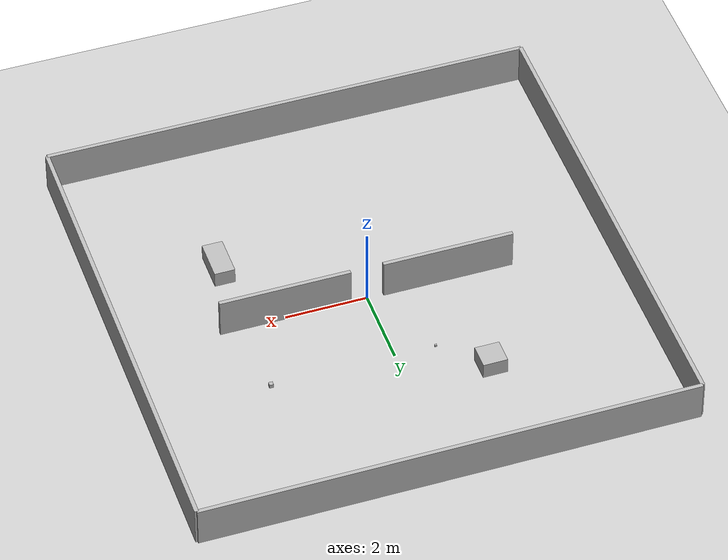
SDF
<?xml version="1.0" ?>
<sdf version="1.8">
  <world name="complex_room">

    <!-- ================= Physics & Systems ================= -->
    <physics name="1ms" type="ignored">
      <max_step_size>0.001</max_step_size>
      <real_time_factor>1.0</real_time_factor>
    </physics>

    <plugin filename="libignition-gazebo-physics-system.so"
            name="ignition::gazebo::systems::Physics"/>
    <plugin filename="libignition-gazebo-user-commands-system.so"
            name="ignition::gazebo::systems::UserCommands"/>
    <plugin filename="libignition-gazebo-scene-broadcaster-system.so"
            name="ignition::gazebo::systems::SceneBroadcaster"/>

    <!-- ================= Light ================= -->
    <light type="directional" name="sun">
      <pose>0 0 10 0 0 0</pose>
      <diffuse>0.8 0.8 0.8 1</diffuse>
      <direction>-0.5 0.2 -1</direction>
    </light>

    <!-- ================= Ground ================= -->
    <model name="ground_plane">
      <static>true</static>
      <link name="link">
        <collision name="collision">
          <geometry>
            <plane>
              <normal>0 0 1</normal>
              <size>50 50</size>
            </plane>
          </geometry>
        </collision>
        <visual name="visual">
          <geometry>
            <plane>
              <normal>0 0 1</normal>
              <size>50 50</size>
            </plane>
          </geometry>
        </visual>
      </link>
    </model>

    <!-- ================= Outer Walls ================= -->
    <model name="wall_north">
      <static>true</static>
      <pose>0 6 0.5 0 0 0</pose>
      <link name="link">
        <collision><geometry><box><size>12 0.1 1</size></box></geometry></collision>
        <visual><geometry><box><size>12 0.1 1</size></box></geometry></visual>
      </link>
    </model>

    <model name="wall_south">
      <static>true</static>
      <pose>0 -6 0.5 0 0 0</pose>
      <link name="link">
        <collision><geometry><box><size>12 0.1 1</size></box></geometry></collision>
        <visual><geometry><box><size>12 0.1 1</size></box></geometry></visual>
      </link>
    </model>

    <model name="wall_east">
      <static>true</static>
      <pose>6 0 0.5 0 0 0</pose>
      <link name="link">
        <collision><geometry><box><size>0.1 12 1</size></box></geometry></collision>
        <visual><geometry><box><size>0.1 12 1</size></box></geometry></visual>
      </link>
    </model>

    <model name="wall_west">
      <static>true</static>
      <pose>-6 0 0.5 0 0 0</pose>
      <link name="link">
        <collision><geometry><box><size>0.1 12 1</size></box></geometry></collision>
        <visual><geometry><box><size>0.1 12 1</size></box></geometry></visual>
      </link>
    </model>

    <!-- ================= Inner Wall with Door ================= -->
    <!-- 左半 -->
    <model name="inner_wall_left">
      <static>true</static>
      <pose>-2 0 0.5 0 0 0</pose>
      <link name="link">
        <collision><geometry><box><size>3.2 0.1 1</size></box></geometry></collision>
        <visual><geometry><box><size>3.2 0.1 1</size></box></geometry></visual>
      </link>
    </model>

    <!-- 右半 -->
    <model name="inner_wall_right">
      <static>true</static>
      <pose>2 0 0.5 0 0 0</pose>
      <link name="link">
        <collision><geometry><box><size>3.2 0.1 1</size></box></geometry></collision>
        <visual><geometry><box><size>3.2 0.1 1</size></box></geometry></visual>
      </link>
    </model>

    <!-- ================= Obstacles ================= -->
    <model name="obstacle_1">
      <static>true</static>
      <pose>-2 3 0.2 0 0 0</pose>
      <link name="link">
        <collision><geometry><box><size>0.6 0.6 0.4</size></box></geometry></collision>
        <visual><geometry><box><size>0.6 0.6 0.4</size></box></geometry></visual>
      </link>
    </model>

    <model name="obstacle_2">
      <static>true</static>
      <pose>3 -2 0.2 0 0 0</pose>
      <link name="link">
        <collision><geometry><box><size>0.5 1.0 0.4</size></box></geometry></collision>
        <visual><geometry><box><size>0.5 1.0 0.4</size></box></geometry></visual>
      </link>
    </model>

    <!-- ================= Grasp Objects ================= -->
    <!-- 5 cm cube -->
    <model name="cube_5cm">
      <static>false</static>
      <pose>-1 2 0.025 0 0 0</pose>
      <link name="link">
        <inertial><mass>0.05</mass></inertial>
        <collision><geometry><box><size>0.05 0.05 0.05</size></box></geometry></collision>
        <visual><geometry><box><size>0.05 0.05 0.05</size></box></geometry></visual>
      </link>
    </model>

    <!-- 10 cm cube -->
    <model name="cube_10cm">
      <static>false</static>
      <pose>3 2 0.05 0 0 0</pose>
      <link name="link">
        <inertial><mass>0.2</mass></inertial>
        <collision><geometry><box><size>0.1 0.1 0.1</size></box></geometry></collision>
        <visual><geometry><box><size>0.1 0.1 0.1</size></box></geometry></visual>
      </link>
    </model>

  </world>
</sdf>
